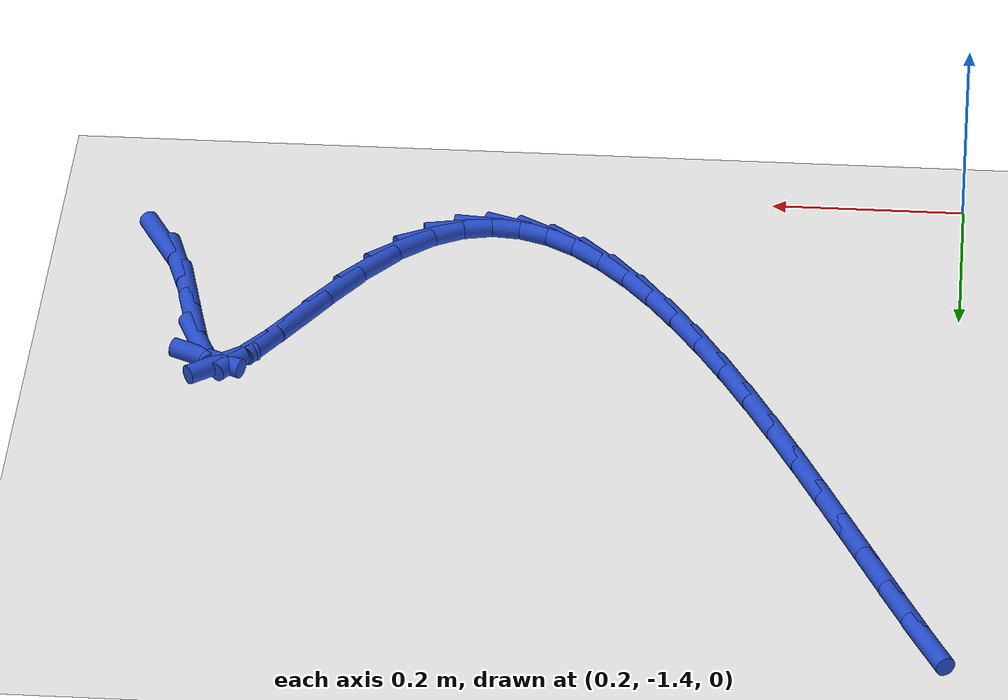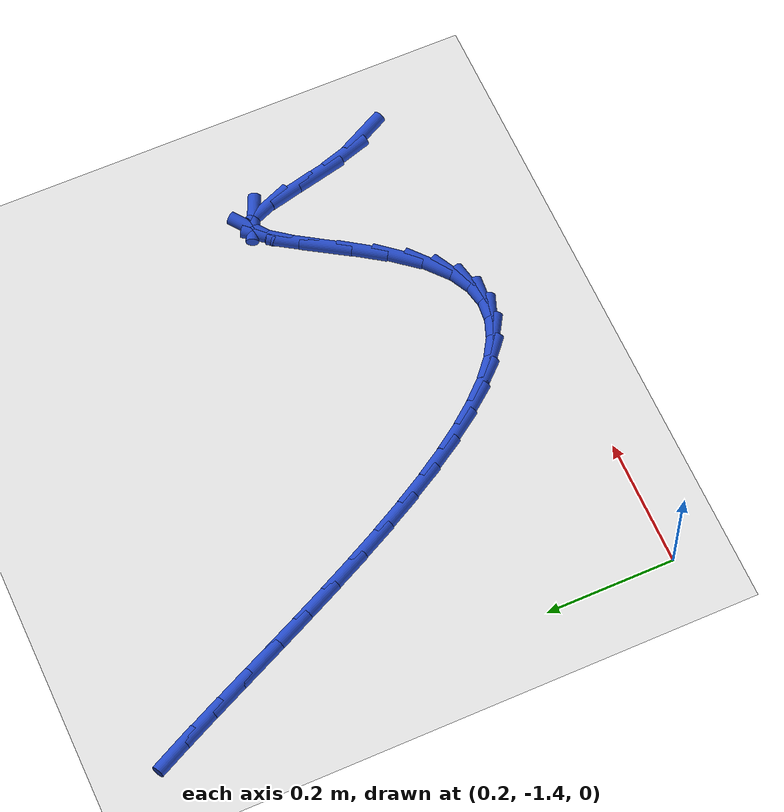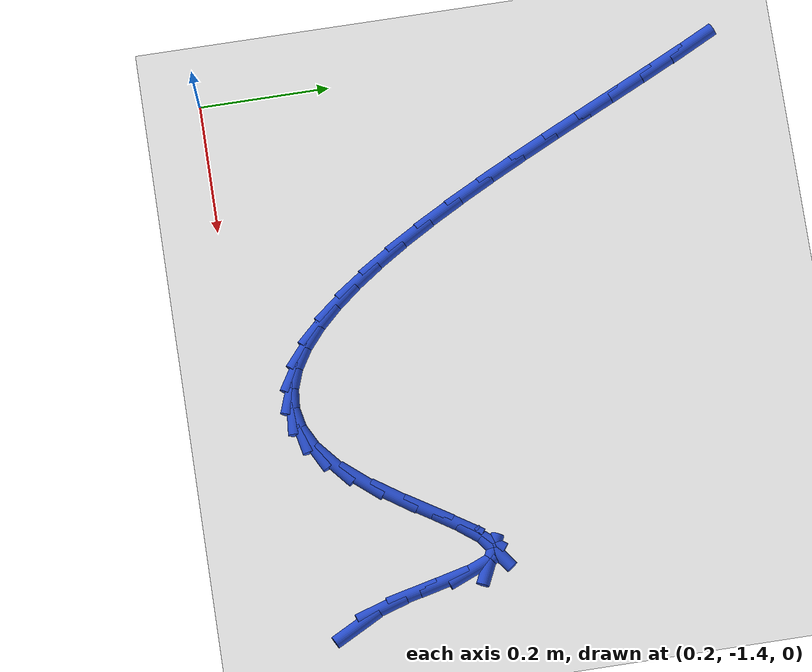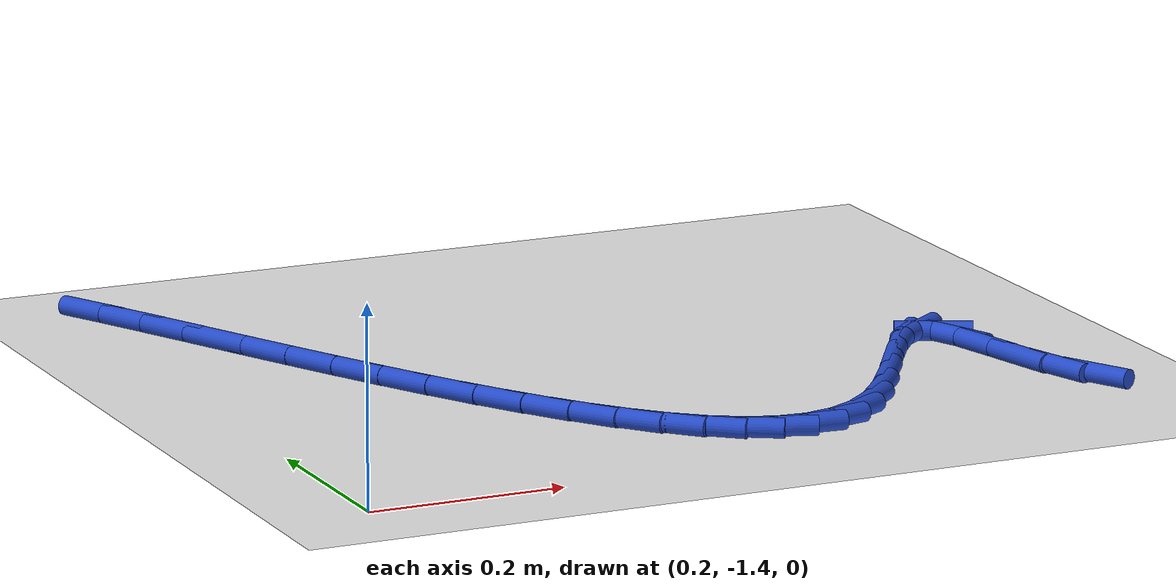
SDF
<sdf version="1.6">
 <world name="default">
  <model name="ground_plane">
   <static>1</static>
   <link name="link">
    <collision name="collision">
     <geometry><plane><normal>0 0 1</normal><size>100 100</size></plane></geometry>
     <surface><friction><ode><mu>100</mu><mu2>50</mu2></ode></friction></surface>
    </collision>
    <visual name="visual">
     <cast_shadows>0</cast_shadows>
     <geometry><plane><normal>0 0 1</normal><size>100 100</size></plane></geometry>
     <material>
      <script><uri>file://media/materials/scripts/gazebo.material</uri><name>Gazebo/WhiteGlow</name></script>
     </material>
    </visual>
   </link>
  </model>
  <model name="line">
   <link name="link_152">
    <pose>1.0314717924137393 -1.2796461517551636 0.01 0 1.57 -1.0889054137054839</pose>
    <collision name="collision">
     <geometry><cylinder><radius>0.01</radius><length>0.08</length></cylinder></geometry>
    </collision>
    <visual name="visual">
     <material>
      <script><name>Gazebo/Blue</name><uri>file://media/materials/scripts/gazebo.material</uri></script>
     </material>
     <geometry><cylinder><radius>0.01</radius><length>0.08</length></cylinder></geometry>
    </visual>
   </link>
   <link name="link_153">
    <pose>1.010422259981868 -1.2393997597857773 0.01 0 1.57 -1.2703998297402939</pose>
    <collision name="collision">
     <geometry><cylinder><radius>0.01</radius><length>0.08</length></cylinder></geometry>
    </collision>
    <visual name="visual">
     <material>
      <script><name>Gazebo/Blue</name><uri>file://media/materials/scripts/gazebo.material</uri></script>
     </material>
     <geometry><cylinder><radius>0.01</radius><length>0.08</length></cylinder></geometry>
    </visual>
   </link>
   <link name="link_154">
    <pose>0.9953025501053778 -1.1905904052955192 0.01 0 1.57 -1.3431462138363783</pose>
    <collision name="collision">
     <geometry><cylinder><radius>0.01</radius><length>0.08</length></cylinder></geometry>
    </collision>
    <visual name="visual">
     <material>
      <script><name>Gazebo/Blue</name><uri>file://media/materials/scripts/gazebo.material</uri></script>
     </material>
     <geometry><cylinder><radius>0.01</radius><length>0.08</length></cylinder></geometry>
    </visual>
   </link>
   <link name="link_155">
    <pose>0.983730908172266 -1.1406407292584895 0.01 0 1.57 -1.3329527823127274</pose>
    <collision name="collision">
     <geometry><cylinder><radius>0.01</radius><length>0.08</length></cylinder></geometry>
    </collision>
    <visual name="visual">
     <material>
      <script><name>Gazebo/Blue</name><uri>file://media/materials/scripts/gazebo.material</uri></script>
     </material>
     <geometry><cylinder><radius>0.01</radius><length>0.08</length></cylinder></geometry>
    </visual>
   </link>
   <link name="link_156">
    <pose>0.9732166770747469 -1.0972709687560995 0.01 0 1.57 -1.1808471743252147</pose>
    <collision name="collision">
     <geometry><cylinder><radius>0.01</radius><length>0.08</length></cylinder></geometry>
    </collision>
    <visual name="visual">
     <material>
      <script><name>Gazebo/Blue</name><uri>file://media/materials/scripts/gazebo.material</uri></script>
     </material>
     <geometry><cylinder><radius>0.01</radius><length>0.08</length></cylinder></geometry>
    </visual>
   </link>
   <link name="link_157">
    <pose>0.9612691997050345 -1.0682013608697607 0.01 0 1.57 -0.4365207179897462</pose>
    <collision name="collision">
     <geometry><cylinder><radius>0.01</radius><length>0.08</length></cylinder></geometry>
    </collision>
    <visual name="visual">
     <material>
      <script><name>Gazebo/Blue</name><uri>file://media/materials/scripts/gazebo.material</uri></script>
     </material>
     <geometry><cylinder><radius>0.01</radius><length>0.08</length></cylinder></geometry>
    </visual>
   </link>
   <link name="link_158">
    <pose>0.9454752390661824 -1.0608328930557507 0.01 0 1.57 0.6328885054179503</pose>
    <collision name="collision">
     <geometry><cylinder><radius>0.01</radius><length>0.08</length></cylinder></geometry>
    </collision>
    <visual name="visual">
     <material>
      <script><name>Gazebo/Blue</name><uri>file://media/materials/scripts/gazebo.material</uri></script>
     </material>
     <geometry><cylinder><radius>0.01</radius><length>0.08</length></cylinder></geometry>
    </visual>
   </link>
   <link name="link_159">
    <pose>0.925060536619995 -1.0758080600106779 0.01 0 1.57 0.9149899126123842</pose>
    <collision name="collision">
     <geometry><cylinder><radius>0.01</radius><length>0.08</length></cylinder></geometry>
    </collision>
    <visual name="visual">
     <material>
      <script><name>Gazebo/Blue</name><uri>file://media/materials/scripts/gazebo.material</uri></script>
     </material>
     <geometry><cylinder><radius>0.01</radius><length>0.08</length></cylinder></geometry>
    </visual>
   </link>
   <link name="link_160">
    <pose>0.9008147615564174 -1.107320342918582 0.01 0 1.57 0.9955243073860566</pose>
    <collision name="collision">
     <geometry><cylinder><radius>0.01</radius><length>0.08</length></cylinder></geometry>
    </collision>
    <visual name="visual">
     <material>
      <script><name>Gazebo/Blue</name><uri>file://media/materials/scripts/gazebo.material</uri></script>
     </material>
     <geometry><cylinder><radius>0.01</radius><length>0.08</length></cylinder></geometry>
    </visual>
   </link>
   <link name="link_161">
    <pose>0.8735899826913535 -1.1493059118207054 0.01 0 1.57 1.006716310873266</pose>
    <collision name="collision">
     <geometry><cylinder><radius>0.01</radius><length>0.08</length></cylinder></geometry>
    </collision>
    <visual name="visual">
     <material>
      <script><name>Gazebo/Blue</name><uri>file://media/materials/scripts/gazebo.material</uri></script>
     </material>
     <geometry><cylinder><radius>0.01</radius><length>0.08</length></cylinder></geometry>
    </visual>
   </link>
   <link name="link_162">
    <pose>0.844238268840707 -1.1957009367582898 0.01 0 1.57 0.9705245517621075</pose>
    <collision name="collision">
     <geometry><cylinder><radius>0.01</radius><length>0.08</length></cylinder></geometry>
    </collision>
    <visual name="visual">
     <material>
      <script><name>Gazebo/Blue</name><uri>file://media/materials/scripts/gazebo.material</uri></script>
     </material>
     <geometry><cylinder><radius>0.01</radius><length>0.08</length></cylinder></geometry>
    </visual>
   </link>
   <link name="link_163">
    <pose>0.8136116888203817 -1.2404415877725767 0.01 0 1.57 0.8737563691873198</pose>
    <collision name="collision">
     <geometry><cylinder><radius>0.01</radius><length>0.08</length></cylinder></geometry>
    </collision>
    <visual name="visual">
     <material>
      <script><name>Gazebo/Blue</name><uri>file://media/materials/scripts/gazebo.material</uri></script>
     </material>
     <geometry><cylinder><radius>0.01</radius><length>0.08</length></cylinder></geometry>
    </visual>
   </link>
   <link name="link_164">
    <pose>0.782553340153425 -1.2775376594356946 0.01 0 1.57 0.7033312879152143</pose>
    <collision name="collision">
     <geometry><cylinder><radius>0.01</radius><length>0.08</length></cylinder></geometry>
    </collision>
    <visual name="visual">
     <material>
      <script><name>Gazebo/Blue</name><uri>file://media/materials/scripts/gazebo.material</uri></script>
     </material>
     <geometry><cylinder><radius>0.01</radius><length>0.08</length></cylinder></geometry>
    </visual>
   </link>
   <link name="link_165">
    <pose>0.7515628677614844 -1.303817551961868 0.01 0 1.57 0.4764089657801818</pose>
    <collision name="collision">
     <geometry><cylinder><radius>0.01</radius><length>0.08</length></cylinder></geometry>
    </collision>
    <visual name="visual">
     <material>
      <script><name>Gazebo/Blue</name><uri>file://media/materials/scripts/gazebo.material</uri></script>
     </material>
     <geometry><cylinder><radius>0.01</radius><length>0.08</length></cylinder></geometry>
    </visual>
   </link>
   <link name="link_166">
    <pose>0.7206968052841194 -1.3197461381227265 0.01 0 1.57 0.2017682592593097</pose>
    <collision name="collision">
     <geometry><cylinder><radius>0.01</radius><length>0.08</length></cylinder></geometry>
    </collision>
    <visual name="visual">
     <material>
      <script><name>Gazebo/Blue</name><uri>file://media/materials/scripts/gazebo.material</uri></script>
     </material>
     <geometry><cylinder><radius>0.01</radius><length>0.08</length></cylinder></geometry>
    </visual>
   </link>
   <link name="link_167">
    <pose>0.6899823768934452 -1.3260288241142295 0.01 0 1.57 -0.08682092846396715</pose>
    <collision name="collision">
     <geometry><cylinder><radius>0.01</radius><length>0.08</length></cylinder></geometry>
    </collision>
    <visual name="visual">
     <material>
      <script><name>Gazebo/Blue</name><uri>file://media/materials/scripts/gazebo.material</uri></script>
     </material>
     <geometry><cylinder><radius>0.01</radius><length>0.08</length></cylinder></geometry>
    </visual>
   </link>
   <link name="link_168">
    <pose>0.6594468067615749 -1.3233710161323373 0.01 0 1.57 -0.34480465767107754</pose>
    <collision name="collision">
     <geometry><cylinder><radius>0.01</radius><length>0.08</length></cylinder></geometry>
    </collision>
    <visual name="visual">
     <material>
      <script><name>Gazebo/Blue</name><uri>file://media/materials/scripts/gazebo.material</uri></script>
     </material>
     <geometry><cylinder><radius>0.01</radius><length>0.08</length></cylinder></geometry>
    </visual>
   </link>
   <link name="link_169">
    <pose>0.6291173190606228 -1.3124781203730074 0.01 0 1.57 -0.5492861232720893</pose>
    <collision name="collision">
     <geometry><cylinder><radius>0.01</radius><length>0.08</length></cylinder></geometry>
    </collision>
    <visual name="visual">
     <material>
      <script><name>Gazebo/Blue</name><uri>file://media/materials/scripts/gazebo.material</uri></script>
     </material>
     <geometry><cylinder><radius>0.01</radius><length>0.08</length></cylinder></geometry>
    </visual>
   </link>
   <link name="link_170">
    <pose>0.5990211379627037 -1.2940555430321998 0.01 0 1.57 -0.7022823708572541</pose>
    <collision name="collision">
     <geometry><cylinder><radius>0.01</radius><length>0.08</length></cylinder></geometry>
    </collision>
    <visual name="visual">
     <material>
      <script><name>Gazebo/Blue</name><uri>file://media/materials/scripts/gazebo.material</uri></script>
     </material>
     <geometry><cylinder><radius>0.01</radius><length>0.08</length></cylinder></geometry>
    </visual>
   </link>
   <link name="link_171">
    <pose>0.5691854876399319 -1.2688086903058735 0.01 0 1.57 -0.8152320045883809</pose>
    <collision name="collision">
     <geometry><cylinder><radius>0.01</radius><length>0.08</length></cylinder></geometry>
    </collision>
    <visual name="visual">
     <material>
      <script><name>Gazebo/Blue</name><uri>file://media/materials/scripts/gazebo.material</uri></script>
     </material>
     <geometry><cylinder><radius>0.01</radius><length>0.08</length></cylinder></geometry>
    </visual>
   </link>
   <link name="link_172">
    <pose>0.5396375922644213 -1.237442968389988 0.01 0 1.57 -0.8992205037648868</pose>
    <collision name="collision">
     <geometry><cylinder><radius>0.01</radius><length>0.08</length></cylinder></geometry>
    </collision>
    <visual name="visual">
     <material>
      <script><name>Gazebo/Blue</name><uri>file://media/materials/scripts/gazebo.material</uri></script>
     </material>
     <geometry><cylinder><radius>0.01</radius><length>0.08</length></cylinder></geometry>
    </visual>
   </link>
   <link name="link_173">
    <pose>0.5104046760082865 -1.2006637834805016 0.01 0 1.57 -0.9625068253441534</pose>
    <collision name="collision">
     <geometry><cylinder><radius>0.01</radius><length>0.08</length></cylinder></geometry>
    </collision>
    <visual name="visual">
     <material>
      <script><name>Gazebo/Blue</name><uri>file://media/materials/scripts/gazebo.material</uri></script>
     </material>
     <geometry><cylinder><radius>0.01</radius><length>0.08</length></cylinder></geometry>
    </visual>
   </link>
   <link name="link_174">
    <pose>0.4815139630436416 -1.1591765417733744 0.01 0 1.57 -1.010773940186801</pose>
    <collision name="collision">
     <geometry><cylinder><radius>0.01</radius><length>0.08</length></cylinder></geometry>
    </collision>
    <visual name="visual">
     <material>
      <script><name>Gazebo/Blue</name><uri>file://media/materials/scripts/gazebo.material</uri></script>
     </material>
     <geometry><cylinder><radius>0.01</radius><length>0.08</length></cylinder></geometry>
    </visual>
   </link>
   <link name="link_175">
    <pose>0.4529926775426009 -1.113686649464565 0.01 0 1.57 -1.0478531868471739</pose>
    <collision name="collision">
     <geometry><cylinder><radius>0.01</radius><length>0.08</length></cylinder></geometry>
    </collision>
    <visual name="visual">
     <material>
      <script><name>Gazebo/Blue</name><uri>file://media/materials/scripts/gazebo.material</uri></script>
     </material>
     <geometry><cylinder><radius>0.01</radius><length>0.08</length></cylinder></geometry>
    </visual>
   </link>
   <link name="link_176">
    <pose>0.42486804367727876 -1.064899512750033 0.01 0 1.57 -1.0763246570222096</pose>
    <collision name="collision">
     <geometry><cylinder><radius>0.01</radius><length>0.08</length></cylinder></geometry>
    </collision>
    <visual name="visual">
     <material>
      <script><name>Gazebo/Blue</name><uri>file://media/materials/scripts/gazebo.material</uri></script>
     </material>
     <geometry><cylinder><radius>0.01</radius><length>0.08</length></cylinder></geometry>
    </visual>
   </link>
   <link name="link_177">
    <pose>0.3971672856197892 -1.0135205378257368 0.01 0 1.57 -1.0979255911984602</pose>
    <collision name="collision">
     <geometry><cylinder><radius>0.01</radius><length>0.08</length></cylinder></geometry>
    </collision>
    <visual name="visual">
     <material>
      <script><name>Gazebo/Blue</name><uri>file://media/materials/scripts/gazebo.material</uri></script>
     </material>
     <geometry><cylinder><radius>0.01</radius><length>0.08</length></cylinder></geometry>
    </visual>
   </link>
   <link name="link_178">
    <pose>0.36991762754224666 -0.9602551308876363 0.01 0 1.57 -1.113810398175528</pose>
    <collision name="collision">
     <geometry><cylinder><radius>0.01</radius><length>0.08</length></cylinder></geometry>
    </collision>
    <visual name="visual">
     <material>
      <script><name>Gazebo/Blue</name><uri>file://media/materials/scripts/gazebo.material</uri></script>
     </material>
     <geometry><cylinder><radius>0.01</radius><length>0.08</length></cylinder></geometry>
    </visual>
   </link>
   <link name="link_179">
    <pose>0.34314629361676546 -0.9058086981316903 0.01 0 1.57 -1.12470978870112</pose>
    <collision name="collision">
     <geometry><cylinder><radius>0.01</radius><length>0.08</length></cylinder></geometry>
    </collision>
    <visual name="visual">
     <material>
      <script><name>Gazebo/Blue</name><uri>file://media/materials/scripts/gazebo.material</uri></script>
     </material>
     <geometry><cylinder><radius>0.01</radius><length>0.08</length></cylinder></geometry>
    </visual>
   </link>
   <link name="link_180">
    <pose>0.31688050801545975 -0.850886645753858 0.01 0 1.57 -1.1310214627493804</pose>
    <collision name="collision">
     <geometry><cylinder><radius>0.01</radius><length>0.08</length></cylinder></geometry>
    </collision>
    <visual name="visual">
     <material>
      <script><name>Gazebo/Blue</name><uri>file://media/materials/scripts/gazebo.material</uri></script>
     </material>
     <geometry><cylinder><radius>0.01</radius><length>0.08</length></cylinder></geometry>
    </visual>
   </link>
   <link name="link_181">
    <pose>0.2911474949104438 -0.7961943799500987 0.01 0 1.57 -1.1328504433886568</pose>
    <collision name="collision">
     <geometry><cylinder><radius>0.01</radius><length>0.08</length></cylinder></geometry>
    </collision>
    <visual name="visual">
     <material>
      <script><name>Gazebo/Blue</name><uri>file://media/materials/scripts/gazebo.material</uri></script>
     </material>
     <geometry><cylinder><radius>0.01</radius><length>0.08</length></cylinder></geometry>
    </visual>
   </link>
   <link name="link_182">
    <pose>0.26597447847383193 -0.7424373069163717 0.01 0 1.57 -1.1300054072974042</pose>
    <collision name="collision">
     <geometry><cylinder><radius>0.01</radius><length>0.08</length></cylinder></geometry>
    </collision>
    <visual name="visual">
     <material>
      <script><name>Gazebo/Blue</name><uri>file://media/materials/scripts/gazebo.material</uri></script>
     </material>
     <geometry><cylinder><radius>0.01</radius><length>0.08</length></cylinder></geometry>
    </visual>
   </link>
   <link name="link_183">
    <pose>0.24138868287773843 -0.690320832848636 0.01 0 1.57 -1.1219459040497122</pose>
    <collision name="collision">
     <geometry><cylinder><radius>0.01</radius><length>0.08</length></cylinder></geometry>
    </collision>
    <visual name="visual">
     <material>
      <script><name>Gazebo/Blue</name><uri>file://media/materials/scripts/gazebo.material</uri></script>
     </material>
     <geometry><cylinder><radius>0.01</radius><length>0.08</length></cylinder></geometry>
    </visual>
   </link>
   <link name="link_184">
    <pose>0.21741733229427745 -0.6405503639428504 0.01 0 1.57 -1.1076599438944308</pose>
    <collision name="collision">
     <geometry><cylinder><radius>0.01</radius><length>0.08</length></cylinder></geometry>
    </collision>
    <visual name="visual">
     <material>
      <script><name>Gazebo/Blue</name><uri>file://media/materials/scripts/gazebo.material</uri></script>
     </material>
     <geometry><cylinder><radius>0.01</radius><length>0.08</length></cylinder></geometry>
    </visual>
   </link>
  </model>
 </world>
</sdf>
